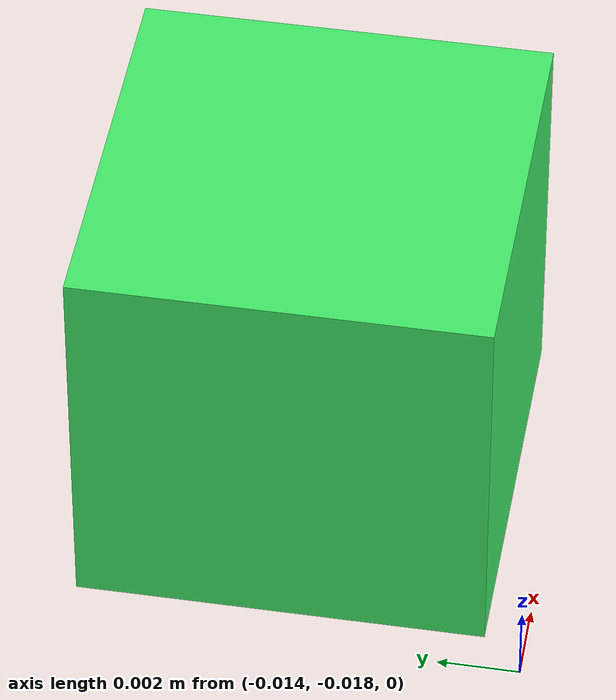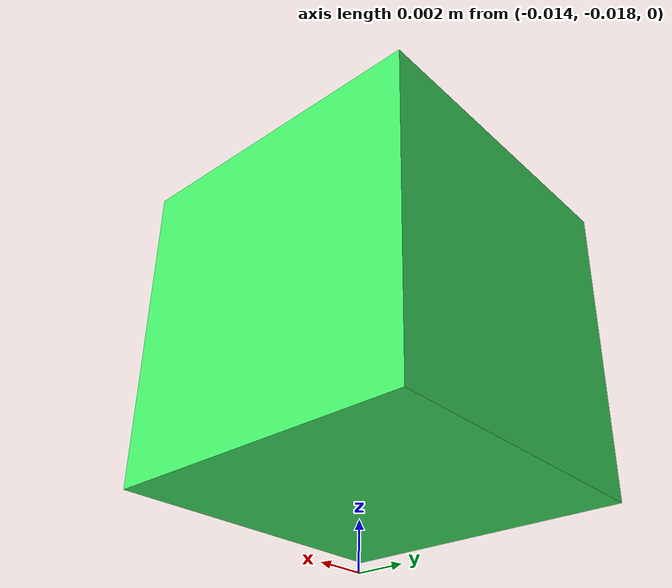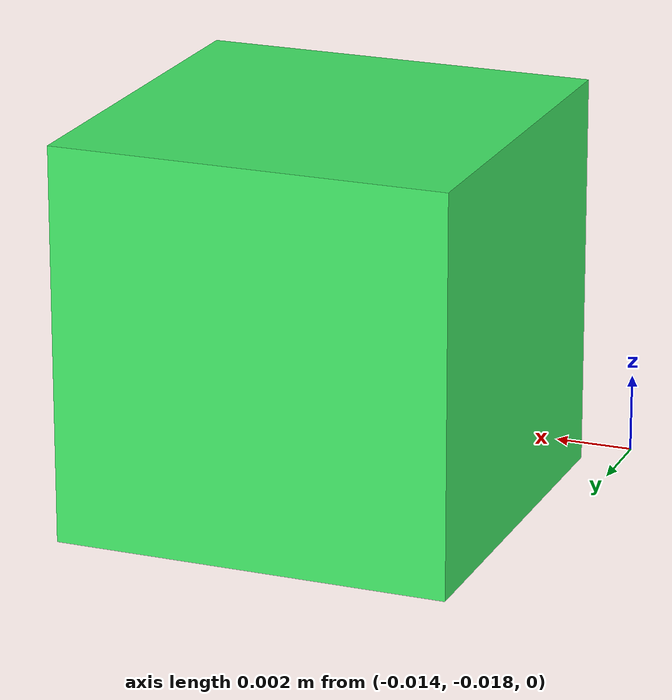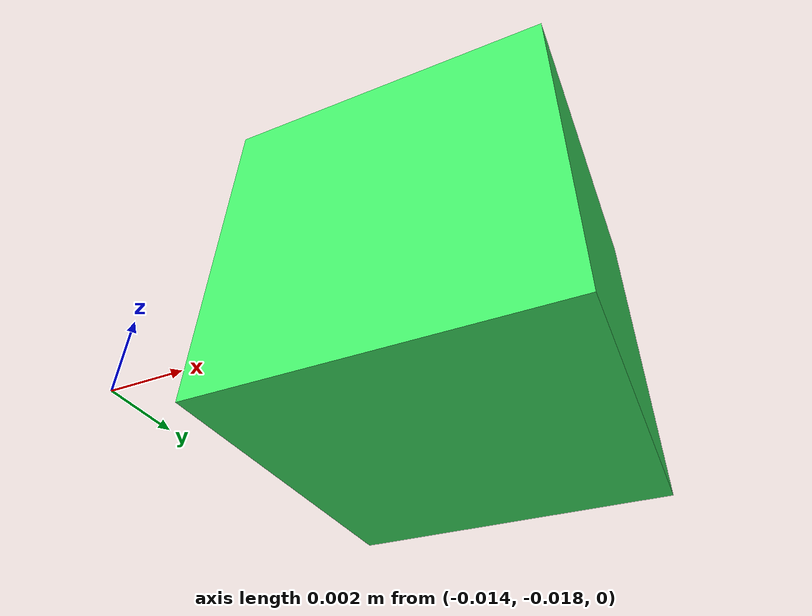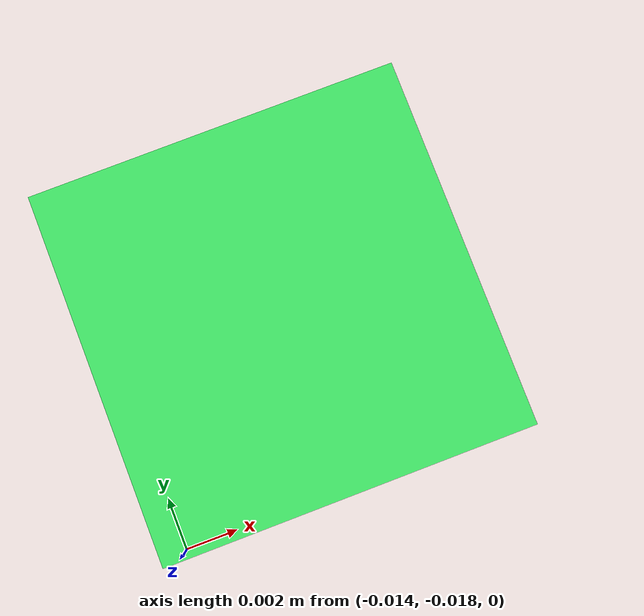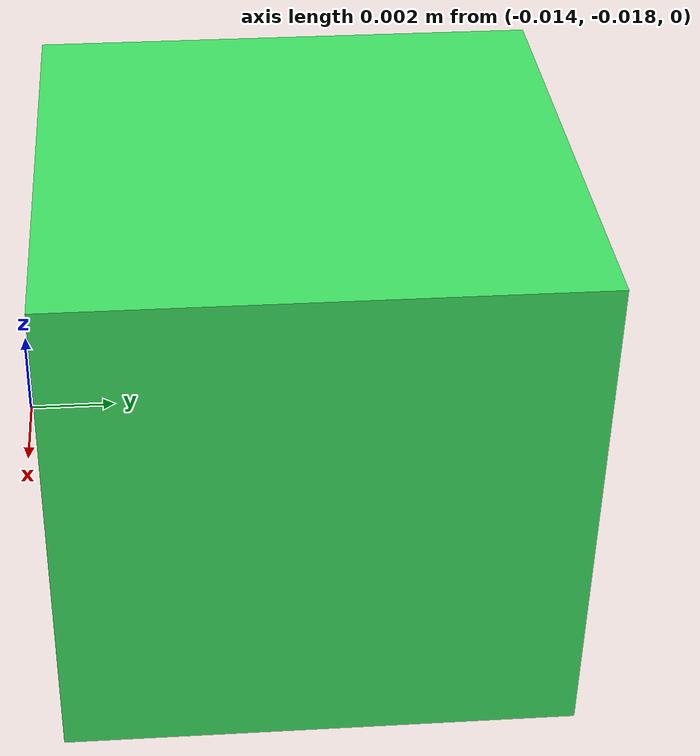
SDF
<?xml version='1.0'?>
<sdf version="1.4">
  <model name="Cube004">
    <link name="Cube004">
    <gravity>0</gravity>
      <collision name="collision">
        <mesh>
          <uri>model://meshes/Cube004.dae</uri>
        </mesh>
      </collision>
      <visual name="visual">
        <geometry>
          <mesh>
            <uri>model://meshes/Cube004.dae</uri>
          </mesh>
        </geometry>
        <surface>
          <friction>
            <ode>
              <mu>0.0</mu>
            </ode>
          </friction>
        </surface>
      </visual>
  </link>
  </model>
</sdf>
